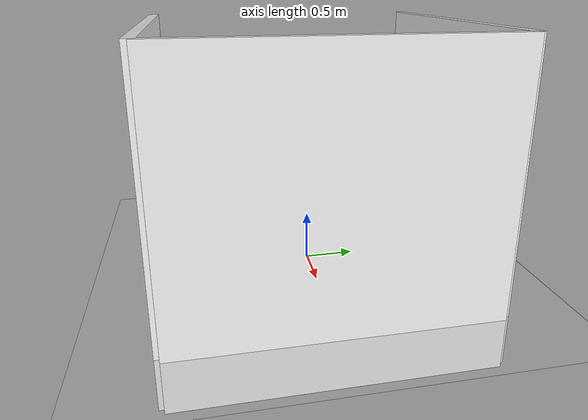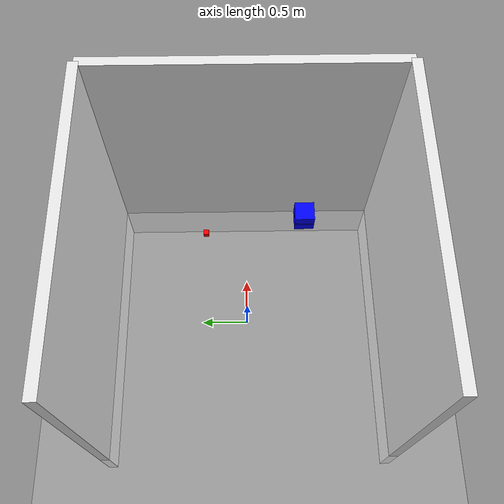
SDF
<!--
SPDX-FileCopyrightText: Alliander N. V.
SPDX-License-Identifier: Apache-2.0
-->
<sdf version="1.6">
 <world name="test_table_openvla">
  <physics name="1ms" type="ode">
   <max_step_size>0.001</max_step_size>
   <real_time_factor>1.0</real_time_factor>
  </physics>
  <plugin filename="ignition-gazebo-imu-system" name="gz::sim::systems::Imu"/>
  <plugin filename="gz-sim-physics-system" name="gz::sim::systems::Physics"/>
  <plugin filename="gz-sim-user-commands-system" name="gz::sim::systems::UserCommands"/>
  <plugin filename="gz-sim-scene-broadcaster-system" name="gz::sim::systems::SceneBroadcaster"/>
  <plugin filename="gz-sim-contact-system" name="gz::sim::systems::Contact"/>
  <plugin filename="gz-sim-sensors-system" name="gz::sim::systems::Sensors">
   <render_engine>ogre2</render_engine>
  </plugin>
  <model name="blue_bin">
   <pose>0.8 -0.6 1 0 0 0</pose>
   <static>false</static>
   <link name="link">
    <collision name="bottom_col"><geometry><box><size>0.2 0.2 0.02</size></box></geometry></collision>
    <visual name="bottom_vis">
     <geometry><box><size>0.2 0.2 0.02</size></box></geometry>
     <material><ambient>0 0 1 1</ambient><diffuse>0 0 1 1</diffuse><specular>0.1 0.1 0.1 1</specular></material>
    </visual>
    <collision name="wall1">
     <pose>0 0.1 0.1 0 0 0</pose>
     <geometry><box><size>0.2 0.02 0.2</size></box></geometry>
    </collision>
    <collision name="wall2">
     <pose>0 -0.1 0.1 0 0 0</pose>
     <geometry><box><size>0.2 0.02 0.2</size></box></geometry>
    </collision>
    <collision name="wall3">
     <pose>0.1 0 0.1 0 0 0</pose>
     <geometry><box><size>0.02 0.2 0.2</size></box></geometry>
    </collision>
    <collision name="wall4">
     <pose>-0.1 0 0.1 0 0 0</pose>
     <geometry><box><size>0.02 0.2 0.2</size></box></geometry>
    </collision>
    <visual name="walls_vis">
     <geometry><box><size>0.2 0.2 0.2</size></box></geometry>
     <material><ambient>0 0 1 1</ambient><diffuse>0 0 1 1</diffuse><specular>0.1 0.1 0.1 1</specular></material>
    </visual>
   </link>
  </model>
  <model name="red_block">
   <pose>0.5 0.4 1.2 0 0 0</pose>
   <static>false</static>
   <link name="link">
    <collision name="collision"><geometry><box><size>0.05 0.05 0.05</size></box></geometry></collision>
    <visual name="visual">
     <geometry><box><size>0.05 0.05 0.05</size></box></geometry>
     <material><ambient>1 0 0 1</ambient><diffuse>1 0 0 1</diffuse><specular>1 0 0 1</specular></material>
    </visual>
   </link>
  </model>
  <light type="directional" name="sun">
   <pose>0 0 10 0 0 0</pose>
   <diffuse>0.8 0.8 0.8 1</diffuse>
   <specular>0.2 0.2 0.2 1</specular>
   <attenuation>
    <range>1000</range>
    <constant>0.9</constant>
    <linear>0.01</linear>
    <quadratic>0.001</quadratic>
   </attenuation>
   <direction>-0.5 0.1 -0.9</direction>
  </light>
  <model name="walls">
   <static>true</static>
   <link name="walls_link">
    <collision name="back_wall_col">
     <pose>0 1.5 1 0 0 0</pose>
     <geometry><box><size>3 0.1 3</size></box></geometry>
    </collision>
    <visual name="back_wall_vis">
     <pose>0 1.5 1 0 0 0</pose>
     <geometry><box><size>3 0.1 3</size></box></geometry>
     <material><ambient>0.9 0.9 0.9 1</ambient></material>
    </visual>
    <collision name="front_wall_col">
     <pose>0 -1.5 1 0 0 0</pose>
     <geometry><box><size>3 0.1 3</size></box></geometry>
    </collision>
    <visual name="front_wall_vis">
     <pose>0 -1.5 1 0 0 0</pose>
     <geometry><box><size>3 0.1 3</size></box></geometry>
     <material><ambient>0.9 0.9 0.9 1</ambient></material>
    </visual>
    <collision name="right_wall_col">
     <pose>1.5 0 1 0 0 0</pose>
     <geometry><box><size>0.1 3 3</size></box></geometry>
    </collision>
    <visual name="right_wall_vis">
     <pose>1.5 0 1 0 0 0</pose>
     <geometry><box><size>0.1 3 3</size></box></geometry>
     <material><ambient>0.9 0.9 0.9 1</ambient></material>
    </visual>
   </link>
  </model>
  <model name="ground_plane">
   <static>true</static>
   <link name="link">
    <collision name="collision">
     <geometry><plane><normal>0 0 1</normal><size>100 100</size></plane></geometry>
    </collision>
    <visual name="visual"><geometry><plane><normal>0 0 1</normal><size>100 100</size></plane></geometry></visual>
   </link>
  </model>
 </world>
</sdf>
